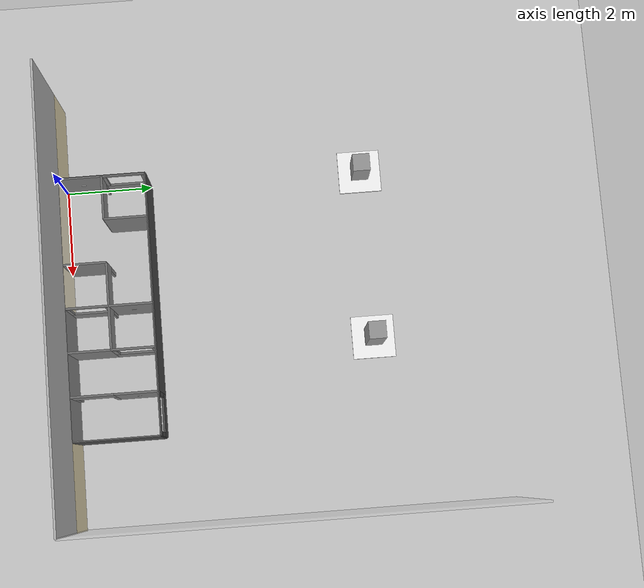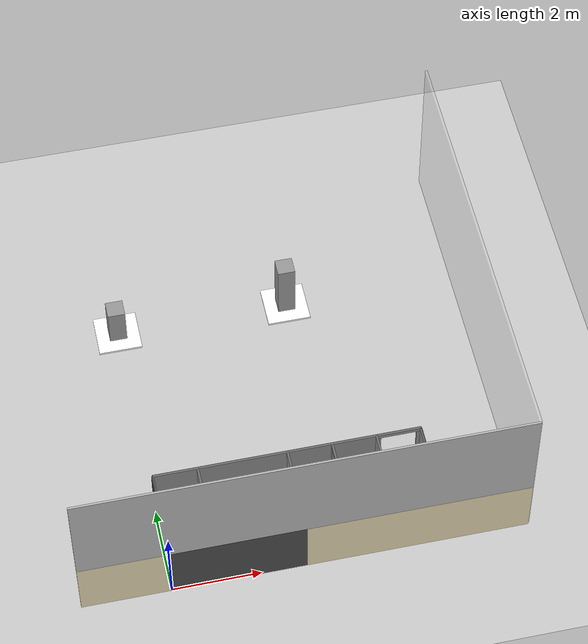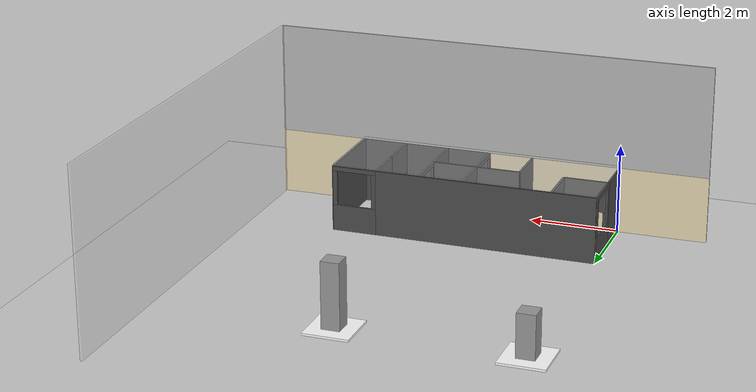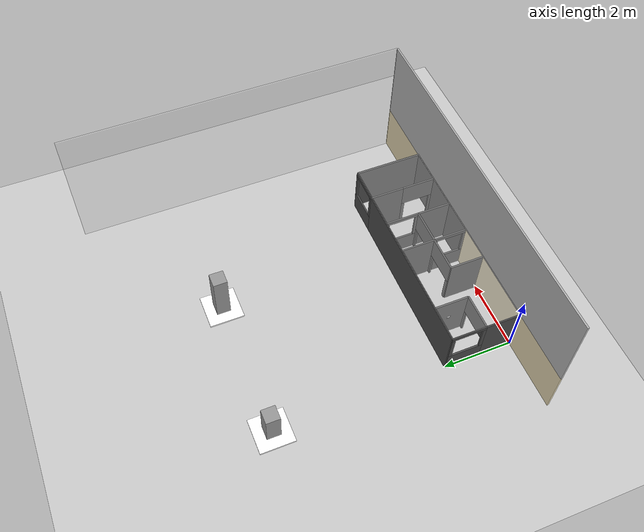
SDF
<sdf version="1.6">
 <world name="arena_espacoconfinado">
  <include><uri>model://sun</uri></include>
  <include><uri>model://ground_plane</uri></include>
  <model name="labirinto_fase4"><include><uri>model://labirinto_confinado</uri></include></model>
  <model name="suporte_1m">
   <static>true</static>
   <link name="base_solo">
    <pose>0 7 0.025 0 0 0</pose>
    <visual name="vis">
     <geometry><box><size>1.0 1.0 0.05</size></box></geometry>
     <material><ambient>1 1 1 1</ambient><diffuse>1 1 1 1</diffuse></material>
    </visual>
   </link>
   <link name="pilar">
    <pose>0 7 0.525 0 0 0</pose>
    <collision name="col"><geometry><box><size>0.4 0.4 0.95</size></box></geometry></collision>
    <visual name="vis">
     <geometry><box><size>0.4 0.4 0.95</size></box></geometry>
     <material><ambient>0.6 0.6 0.6 1</ambient><diffuse>0.6 0.6 0.6 1</diffuse></material>
    </visual>
   </link>
  </model>
  <model name="suporte_1_5m">
   <static>true</static>
   <link name="base_solo">
    <pose>4 7 0.025 0 0 0</pose>
    <visual name="vis">
     <geometry><box><size>1.0 1.0 0.05</size></box></geometry>
     <material><ambient>1 1 1 1</ambient><diffuse>1 1 1 1</diffuse></material>
    </visual>
   </link>
   <link name="pilar">
    <pose>4 7 0.775 0 0 0</pose>
    <collision name="col"><geometry><box><size>0.4 0.4 1.45</size></box></geometry></collision>
    <visual name="vis">
     <geometry><box><size>0.4 0.4 1.45</size></box></geometry>
     <material><ambient>0.6 0.6 0.6 1</ambient><diffuse>0.6 0.6 0.6 1</diffuse></material>
    </visual>
   </link>
  </model>
 </world>
</sdf>

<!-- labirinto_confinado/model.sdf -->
<sdf version="1.6">
  <model name="labirinto_confinado">
    <static>true</static>

    <link name="parede_frontal_inteira">
      <pose>3.0 0 0.75 0 0 0</pose>
      <collision name="col_parede_frontal_inteira"><geometry><box><size>6.0 0.05 1.5</size></box></geometry></collision>
      <visual name="vis_parede_frontal_inteira">
        <geometry><box><size>6.0 0.05 1.5</size></box></geometry>
        <material><ambient>0.3 0.3 0.3 1</ambient><diffuse>0.3 0.3 0.3 1</diffuse></material>
      </visual>
    </link>

    <link name="parede_traseira_solida">
      <pose>2.5 2.0 0.75 0 0 0</pose>
      <collision name="col_parede_traseira_solida"><geometry><box><size>5.0 0.05 1.5</size></box></geometry></collision>
      <visual name="vis_parede_traseira_solida">
        <geometry><box><size>5.0 0.05 1.5</size></box></geometry>
        <material><ambient>0.3 0.3 0.3 1</ambient><diffuse>0.3 0.3 0.3 1</diffuse></material>
      </visual>
    </link>

    <link name="parede_tras_janela_baixo">
      <pose>5.5 2.0 0.3 0 0 0</pose>
      <collision name="col_parede_tras_jan_baixo"><geometry><box><size>1.0 0.05 0.6</size></box></geometry></collision>
      <visual name="vis_parede_tras_jan_baixo">
        <geometry><box><size>1.0 0.05 0.6</size></box></geometry>
        <material><ambient>0.3 0.3 0.3 1</ambient><diffuse>0.3 0.3 0.3 1</diffuse></material>
      </visual>
    </link>

    <link name="parede_tras_janela_cima">
      <pose>5.5 2.0 1.45 0 0 0</pose>
      <collision name="col_parede_tras_jan_cima"><geometry><box><size>1.0 0.05 0.1</size></box></geometry></collision>
      <visual name="vis_parede_tras_jan_cima">
        <geometry><box><size>1.0 0.05 0.1</size></box></geometry>
        <material><ambient>0.3 0.3 0.3 1</ambient><diffuse>0.3 0.3 0.3 1</diffuse></material>
      </visual>
    </link>

    <link name="parede_tras_janela_pilar_esq">
      <pose>5.05 2.0 1.0 0 0 0</pose>
      <collision name="col_parede_tras_jan_pil_esq"><geometry><box><size>0.1 0.05 0.8</size></box></geometry></collision>
      <visual name="vis_parede_tras_jan_pil_esq">
        <geometry><box><size>0.1 0.05 0.8</size></box></geometry>
        <material><ambient>0.3 0.3 0.3 1</ambient><diffuse>0.3 0.3 0.3 1</diffuse></material>
      </visual>
    </link>

    <link name="parede_tras_janela_pilar_dir">
      <pose>5.95 2.0 1.0 0 0 0</pose>
      <collision name="col_parede_tras_jan_pil_dir"><geometry><box><size>0.1 0.05 0.8</size></box></geometry></collision>
      <visual name="vis_parede_tras_jan_pil_dir">
        <geometry><box><size>0.1 0.05 0.8</size></box></geometry>
        <material><ambient>0.3 0.3 0.3 1</ambient><diffuse>0.3 0.3 0.3 1</diffuse></material>
      </visual>
    </link>

    <link name="parede_esq_frente">
      <pose>0 0.5 0.75 0 0 0</pose>
      <collision name="col_parede_esq_frente"><geometry><box><size>0.05 1.0 1.5</size></box></geometry></collision>
      <visual name="vis_parede_esq_frente"><geometry><box><size>0.05 1.0 1.5</size></box></geometry><material><ambient>0.3 0.3 0.3 1</ambient><diffuse>0.3 0.3 0.3 1</diffuse></material></visual>
    </link>

    <link name="parede_esq_tras_baixo">
      <pose>0 1.5 0.3 0 0 0</pose>
      <collision name="col_parede_esq_tras_baixo"><geometry><box><size>0.05 1.0 0.6</size></box></geometry></collision>
      <visual name="vis_parede_esq_tras_baixo"><geometry><box><size>0.05 1.0 0.6</size></box></geometry><material><ambient>0.3 0.3 0.3 1</ambient><diffuse>0.3 0.3 0.3 1</diffuse></material></visual>
    </link>

    <link name="parede_esq_tras_cima">
      <pose>0 1.5 1.45 0 0 0</pose>
      <collision name="col_parede_esq_tras_cima"><geometry><box><size>0.05 1.0 0.1</size></box></geometry></collision>
      <visual name="vis_parede_esq_tras_cima"><geometry><box><size>0.05 1.0 0.1</size></box></geometry><material><ambient>0.3 0.3 0.3 1</ambient><diffuse>0.3 0.3 0.3 1</diffuse></material></visual>
    </link>

    <link name="parede_esq_tras_lateral_esq">
      <pose>0 1.05 1.0 0 0 0</pose>
      <collision name="col_parede_esq_tras_lat_esq"><geometry><box><size>0.05 0.1 0.8</size></box></geometry></collision>
      <visual name="vis_parede_esq_tras_lat_esq"><geometry><box><size>0.05 0.1 0.8</size></box></geometry><material><ambient>0.3 0.3 0.3 1</ambient><diffuse>0.3 0.3 0.3 1</diffuse></material></visual>
    </link>

    <link name="parede_esq_tras_lateral_dir">
      <pose>0 1.95 1.0 0 0 0</pose>
      <collision name="col_parede_esq_tras_lat_dir"><geometry><box><size>0.05 0.1 0.8</size></box></geometry></collision>
      <visual name="vis_parede_esq_tras_lat_dir"><geometry><box><size>0.05 0.1 0.8</size></box></geometry><material><ambient>0.3 0.3 0.3 1</ambient><diffuse>0.3 0.3 0.3 1</diffuse></material></visual>
    </link>

    <link name="parede_direita_inteira">
      <pose>6.0 1.0 0.75 0 0 0</pose>
      <collision name="col_parede_direita_inteira"><geometry><box><size>0.05 2.0 1.5</size></box></geometry></collision>
      <visual name="vis_parede_direita_inteira">
        <geometry><box><size>0.05 2.0 1.5</size></box></geometry>
        <material><ambient>0.3 0.3 0.3 1</ambient><diffuse>0.3 0.3 0.3 1</diffuse></material>
      </visual>
    </link>

    <link name="int_sala_esq_horiz_pilar_esq">
      <pose>0.05 1 0.4 0 0 0</pose>
      <collision name="col_int_sala_esq_horiz_pil_esq"><geometry><box><size>0.1 0.05 0.8</size></box></geometry></collision>
      <visual name="vis_int_sala_esq_horiz_pil_esq"><geometry><box><size>0.1 0.05 0.8</size></box></geometry><material><ambient>0.3 0.3 0.3 1</ambient><diffuse>0.3 0.3 0.3 1</diffuse></material></visual>
    </link>

    <link name="int_sala_esq_horiz_pilar_dir">
      <pose>0.95 1 0.4 0 0 0</pose>
      <collision name="col_int_sala_esq_horiz_pil_dir"><geometry><box><size>0.1 0.05 0.8</size></box></geometry></collision>
      <visual name="vis_int_sala_esq_horiz_pil_dir"><geometry><box><size>0.1 0.05 0.8</size></box></geometry><material><ambient>0.3 0.3 0.3 1</ambient><diffuse>0.3 0.3 0.3 1</diffuse></material></visual>
    </link>

    <link name="int_sala_esq_horiz_viga">
      <pose>0.5 1 1.15 0 0 0</pose>
      <collision name="col_int_sala_esq_horiz_viga"><geometry><box><size>1.0 0.05 0.7</size></box></geometry></collision>
      <visual name="vis_int_sala_esq_horiz_viga"><geometry><box><size>1.0 0.05 0.7</size></box></geometry><material><ambient>0.3 0.3 0.3 1</ambient><diffuse>0.3 0.3 0.3 1</diffuse></material></visual>
    </link>

    <link name="int_sala_esq_vertical">
      <pose>1.0 1.5 0.75 0 0 0</pose>
      <collision name="col_int_sala_esq_vertical"><geometry><box><size>0.05 1.0 1.5</size></box></geometry></collision>
      <visual name="vis_int_sala_esq_vertical"><geometry><box><size>0.05 1.0 1.5</size></box></geometry><material><ambient>0.3 0.3 0.3 1</ambient><diffuse>0.3 0.3 0.3 1</diffuse></material></visual>
    </link>

    <link name="int_divisoria_X2">
      <pose>2.0 0.5 0.75 0 0 0</pose>
      <collision name="col_int_divisoria_X2"><geometry><box><size>0.05 1.0 1.5</size></box></geometry></collision>
      <visual name="vis_int_divisoria_X2"><geometry><box><size>0.05 1.0 1.5</size></box></geometry><material><ambient>0.3 0.3 0.3 1</ambient><diffuse>0.3 0.3 0.3 1</diffuse></material></visual>
    </link>

    <link name="int_divisoria_X3_vertical">
      <pose>3.0 1.5 0.75 0 0 0</pose>
      <collision name="col_int_divisoria_X3_vertical"><geometry><box><size>0.05 1.0 1.5</size></box></geometry></collision>
      <visual name="vis_int_divisoria_X3_vertical"><geometry><box><size>0.05 1.0 1.5</size></box></geometry><material><ambient>0.3 0.3 0.3 1</ambient><diffuse>0.3 0.3 0.3 1</diffuse></material></visual>
    </link>

    <link name="int_divisoria_X4">
      <pose>4.0 0.5 0.75 0 0 0</pose>
      <collision name="col_int_divisoria_X4"><geometry><box><size>0.05 1.0 1.5</size></box></geometry></collision>
      <visual name="vis_int_divisoria_X4"><geometry><box><size>0.05 1.0 1.5</size></box></geometry><material><ambient>0.3 0.3 0.3 1</ambient><diffuse>0.3 0.3 0.3 1</diffuse></material></visual>
    </link>

    <link name="int_divisoria_X4_topo_baixo">
      <pose>4.0 1.5 0.3 0 0 0</pose>
      <collision name="col_int_divisoria_X4_topo_baixo"><geometry><box><size>0.05 1.0 0.6</size></box></geometry></collision>
      <visual name="vis_int_divisoria_X4_topo_baixo"><geometry><box><size>0.05 1.0 0.6</size></box></geometry><material><ambient>0.3 0.3 0.3 1</ambient><diffuse>0.3 0.3 0.3 1</diffuse></material></visual>
    </link>

    <link name="int_divisoria_X4_topo_cima">
      <pose>4.0 1.5 1.45 0 0 0</pose>
      <collision name="col_int_divisoria_X4_topo_cima"><geometry><box><size>0.05 1.0 0.1</size></box></geometry></collision>
      <visual name="vis_int_divisoria_X4_topo_cima"><geometry><box><size>0.05 1.0 0.1</size></box></geometry><material><ambient>0.3 0.3 0.3 1</ambient><diffuse>0.3 0.3 0.3 1</diffuse></material></visual>
    </link>

    <link name="int_divisoria_X4_topo_pilar_frente">
      <pose>4.0 1.05 1.0 0 0 0</pose>
      <collision name="col_int_divisoria_X4_topo_pil_frente"><geometry><box><size>0.05 0.1 0.8</size></box></geometry></collision>
      <visual name="vis_int_divisoria_X4_topo_pil_frente"><geometry><box><size>0.05 0.1 0.8</size></box></geometry><material><ambient>0.3 0.3 0.3 1</ambient><diffuse>0.3 0.3 0.3 1</diffuse></material></visual>
    </link>

    <link name="int_divisoria_X4_topo_pilar_tras">
      <pose>4.0 1.95 1.0 0 0 0</pose>
      <collision name="col_int_divisoria_X4_topo_pil_tras"><geometry><box><size>0.05 0.1 0.8</size></box></geometry></collision>
      <visual name="vis_int_divisoria_X4_topo_pil_tras"><geometry><box><size>0.05 0.1 0.8</size></box></geometry><material><ambient>0.3 0.3 0.3 1</ambient><diffuse>0.3 0.3 0.3 1</diffuse></material></visual>
    </link>

    <link name="int_divisoria_central_Y_baixo">
      <pose>3.0 0.5 0.3 0 0 0</pose>
      <collision name="col_int_divisoria_central_Y_baixo"><geometry><box><size>0.05 1.0 0.6</size></box></geometry></collision>
      <visual name="vis_int_divisoria_central_Y_baixo"><geometry><box><size>0.05 1.0 0.6</size></box></geometry><material><ambient>0.3 0.3 0.3 1</ambient><diffuse>0.3 0.3 0.3 1</diffuse></material></visual>
    </link>

    <link name="int_divisoria_central_Y_cima">
      <pose>3.0 0.5 1.45 0 0 0</pose>
      <collision name="col_int_divisoria_central_Y_cima"><geometry><box><size>0.05 1.0 0.1</size></box></geometry></collision>
      <visual name="vis_int_divisoria_central_Y_cima"><geometry><box><size>0.05 1.0 0.1</size></box></geometry><material><ambient>0.3 0.3 0.3 1</ambient><diffuse>0.3 0.3 0.3 1</diffuse></material></visual>
    </link>

    <link name="int_divisoria_central_Y_pilar_frente">
      <pose>3.0 0.05 1.0 0 0 0</pose>
      <collision name="col_int_divisoria_central_Y_pil_frente"><geometry><box><size>0.05 0.1 0.8</size></box></geometry></collision>
      <visual name="vis_int_divisoria_central_Y_pil_frente"><geometry><box><size>0.05 0.1 0.8</size></box></geometry><material><ambient>0.3 0.3 0.3 1</ambient><diffuse>0.3 0.3 0.3 1</diffuse></material></visual>
    </link>

    <link name="int_divisoria_central_Y_pilar_tras">
      <pose>3.0 0.95 1.0 0 0 0</pose>
      <collision name="col_int_divisoria_central_Y_pil_tras"><geometry><box><size>0.05 0.1 0.8</size></box></geometry></collision>
      <visual name="vis_int_divisoria_central_Y_pil_tras"><geometry><box><size>0.05 0.1 0.8</size></box></geometry><material><ambient>0.3 0.3 0.3 1</ambient><diffuse>0.3 0.3 0.3 1</diffuse></material></visual>
    </link>

    <link name="int_central_esq_pilar_esq">
      <pose>2.05 1 0.4 0 0 0</pose>
      <collision name="col_int_central_esq_pilar_esq"><geometry><box><size>0.1 0.05 0.8</size></box></geometry></collision>
      <visual name="vis_int_central_esq_pilar_esq"><geometry><box><size>0.1 0.05 0.8</size></box></geometry><material><ambient>0.3 0.3 0.3 1</ambient><diffuse>0.3 0.3 0.3 1</diffuse></material></visual>
    </link>

    <link name="int_central_esq_pilar_dir">
      <pose>2.95 1 0.4 0 0 0</pose>
      <collision name="col_int_central_esq_pilar_dir"><geometry><box><size>0.1 0.05 0.8</size></box></geometry></collision>
      <visual name="vis_int_central_esq_pilar_dir"><geometry><box><size>0.1 0.05 0.8</size></box></geometry><material><ambient>0.3 0.3 0.3 1</ambient><diffuse>0.3 0.3 0.3 1</diffuse></material></visual>
    </link>

    <link name="int_central_esq_viga">
      <pose>2.5 1 1.15 0 0 0</pose>
      <collision name="col_int_central_esq_viga"><geometry><box><size>1.0 0.05 0.7</size></box></geometry></collision>
      <visual name="vis_int_central_esq_viga"><geometry><box><size>1.0 0.05 0.7</size></box></geometry><material><ambient>0.3 0.3 0.3 1</ambient><diffuse>0.3 0.3 0.3 1</diffuse></material></visual>
    </link>

    <link name="int_central_dir_pilar_esq">
      <pose>3.05 1 0.4 0 0 0</pose>
      <collision name="col_int_central_dir_pilar_esq"><geometry><box><size>0.1 0.05 0.8</size></box></geometry></collision>
      <visual name="vis_int_central_dir_pilar_esq"><geometry><box><size>0.1 0.05 0.8</size></box></geometry><material><ambient>0.3 0.3 0.3 1</ambient><diffuse>0.3 0.3 0.3 1</diffuse></material></visual>
    </link>

    <link name="int_central_dir_pilar_dir">
      <pose>3.95 1 0.4 0 0 0</pose>
      <collision name="col_int_central_dir_pilar_dir"><geometry><box><size>0.1 0.05 0.8</size></box></geometry></collision>
      <visual name="vis_int_central_dir_pilar_dir"><geometry><box><size>0.1 0.05 0.8</size></box></geometry><material><ambient>0.3 0.3 0.3 1</ambient><diffuse>0.3 0.3 0.3 1</diffuse></material></visual>
    </link>

    <link name="int_central_dir_viga">
      <pose>3.5 1 1.15 0 0 0</pose>
      <collision name="col_int_central_dir_viga"><geometry><box><size>1.0 0.05 0.7</size></box></geometry></collision>
      <visual name="vis_int_central_dir_viga"><geometry><box><size>1.0 0.05 0.7</size></box></geometry><material><ambient>0.3 0.3 0.3 1</ambient><diffuse>0.3 0.3 0.3 1</diffuse></material></visual>
    </link>

    <link name="int_sala_dir_topo_solida">
      <pose>5.0 1.5 0.75 0 0 0</pose>
      <collision name="col_int_sala_dir_topo_solida"><geometry><box><size>0.05 1.0 1.5</size></box></geometry></collision>
      <visual name="vis_int_sala_dir_topo_solida">
        <geometry><box><size>0.05 1.0 1.5</size></box></geometry>
        <material><ambient>0.3 0.3 0.3 1</ambient><diffuse>0.3 0.3 0.3 1</diffuse></material>
      </visual>
    </link>

    <link name="int_sala_dir_baixo_pilar_frente">
      <pose>5.0 0.05 0.4 0 0 0</pose>
      <collision name="col_int_sala_dir_baixo_pil_frente"><geometry><box><size>0.05 0.1 0.8</size></box></geometry></collision>
      <visual name="vis_int_sala_dir_baixo_pil_frente">
        <geometry><box><size>0.05 0.1 0.8</size></box></geometry>
        <material><ambient>0.3 0.3 0.3 1</ambient><diffuse>0.3 0.3 0.3 1</diffuse></material>
      </visual>
    </link>

    <link name="int_sala_dir_baixo_pilar_tras">
      <pose>5.0 0.95 0.4 0 0 0</pose>
      <collision name="col_int_sala_dir_baixo_pil_tras"><geometry><box><size>0.05 0.1 0.8</size></box></geometry></collision>
      <visual name="vis_int_sala_dir_baixo_pil_tras">
        <geometry><box><size>0.05 0.1 0.8</size></box></geometry>
        <material><ambient>0.3 0.3 0.3 1</ambient><diffuse>0.3 0.3 0.3 1</diffuse></material>
      </visual>
    </link>

    <link name="int_sala_dir_baixo_viga">
      <pose>5.0 0.5 1.15 0 0 0</pose>
      <collision name="col_int_sala_dir_baixo_viga"><geometry><box><size>0.05 1.0 0.7</size></box></geometry></collision>
      <visual name="vis_int_sala_dir_baixo_viga">
        <geometry><box><size>0.05 1.0 0.7</size></box></geometry>
        <material><ambient>0.3 0.3 0.3 1</ambient><diffuse>0.3 0.3 0.3 1</diffuse></material>
      </visual>
    </link>

    <link name="teto_arena">
      <pose>3.0 1.0 1.525 0 0 0</pose>
      <collision name="col_teto"><geometry><box><size>6.0 2.0 0.05</size></box></geometry></collision>
      <visual name="vis_teto">
        <geometry><box><size>6.0 2.0 0.05</size></box></geometry>
        <material><ambient>0.8 0.8 0.8 0.3</ambient><diffuse>0.8 0.8 0.8 0.3</diffuse></material>
        <transparency>0.7</transparency>
      </visual>
    </link>

    <link name="qr_code_A">
      <pose>0.026 0.5 0.8 0 0 0</pose>
      <collision name="col_qr_A"><geometry><box><size>0.001 0.1 0.1</size></box></geometry></collision>
      <visual name="vis_qr_A">
        <geometry><box><size>0.001 0.1 0.1</size></box></geometry>
        <material>
          <script><uri>model://labirinto_confinado/materials/scripts</uri><uri>model://labirinto_confinado/materials/textures</uri><name>QRCode/A</name></script>
        </material>
      </visual>
    </link>

    <link name="qr_code_B">
      <pose>0.974 1.5 0.8 0 0 3.14159</pose>
      <collision name="col_qr_B"><geometry><box><size>0.001 0.1 0.1</size></box></geometry></collision>
      <visual name="vis_qr_B">
        <geometry><box><size>0.001 0.1 0.1</size></box></geometry>
        <material>
          <script><uri>model://labirinto_confinado/materials/scripts</uri><uri>model://labirinto_confinado/materials/textures</uri><name>QRCode/B</name></script>
        </material>
      </visual>
    </link>

    <link name="qr_code_C">
      <pose>2.5 1.974 0.8 0 0 0</pose>
      <collision name="col_qr_C"><geometry><box><size>0.1 0.001 0.1</size></box></geometry></collision>
      <visual name="vis_qr_C">
        <geometry><box><size>0.1 0.001 0.1</size></box></geometry>
        <material>
          <script><uri>model://labirinto_confinado/materials/scripts</uri><uri>model://labirinto_confinado/materials/textures</uri><name>QRCode/C</name></script>
        </material>
      </visual>
    </link>

    <link name="qr_code_D">
      <pose>3.026 1.5 0.8 0 0 0</pose>
      <collision name="col_qr_D"><geometry><box><size>0.001 0.1 0.1</size></box></geometry></collision>
      <visual name="vis_qr_D">
        <geometry><box><size>0.001 0.1 0.1</size></box></geometry>
        <material>
          <script><uri>model://labirinto_confinado/materials/scripts</uri><uri>model://labirinto_confinado/materials/textures</uri><name>QRCode/D</name></script>
        </material>
      </visual>
    </link>

    <link name="qr_code_E">
      <pose>5.026 1.5 0.8 0 0 3.14159</pose>
      <collision name="col_qr_E"><geometry><box><size>0.001 0.1 0.1</size></box></geometry></collision>
      <visual name="vis_qr_E">
        <geometry><box><size>0.001 0.1 0.1</size></box></geometry>
        <material>
          <script><uri>model://labirinto_confinado/materials/scripts</uri><uri>model://labirinto_confinado/materials/textures</uri><name>QRCode/E</name></script>
        </material>
      </visual>
    </link>

    <link name="parede_base_preta">
      <pose>3.0 0 0.75 0 0 1.57</pose>
      <collision name="col_base_preta">
        <geometry><box><size>0.05 10.0 1.5</size></box></geometry>
      </collision>
      <visual name="vis_base_preta">
        <geometry><box><size>0.05 10.0 1.5</size></box></geometry>
        <material>
          <ambient>0.9 0.85 0.7 1</ambient>
          <diffuse>0.9 0.85 0.7 1</diffuse>
        </material>
      </visual>
    </link>

    <link name="parede_poster_cbr_x">
      <pose>3.0 0 2.75 0 0 1.57</pose>
      <collision name="col_poster_cbr_x">
        <geometry><box><size>0.05 10.0 2.5</size></box></geometry>
      </collision>
      <visual name="vis_poster_cbr_x">
        <geometry><box><size>0.05 10.0 2.5</size></box></geometry>
        <material>
          <script>
            <uri>model://labirinto_confinado/materials/scripts</uri>
            <uri>model://labirinto_confinado/materials/textures</uri>
            <name>CBR/Poster</name>
          </script>
        </material>
      </visual>
    </link>

    <link name="acrilico_direita">
      <pose>8.0 5.0 2.0 0 0 0</pose> <collision name="col_acrilico_dir"><geometry><box><size>0.05 10.0 4.0</size></box></geometry></collision>
      <visual name="vis_acrilico_dir">
        <geometry><box><size>0.05 10.0 4.0</size></box></geometry>
        <material>
          <ambient>0.8 0.8 0.8 0.3</ambient>
          <diffuse>0.8 0.8 0.8 0.3</diffuse>
        </material>
        <transparency>0.7</transparency>
      </visual>
    </link>
 </model>
</sdf>
